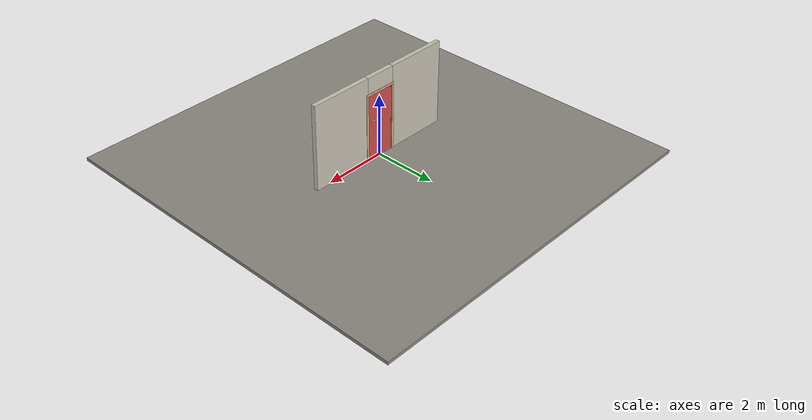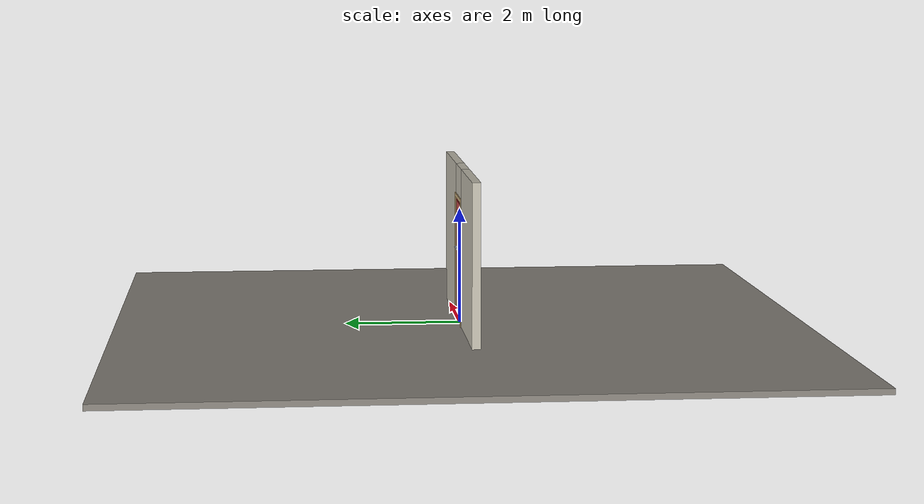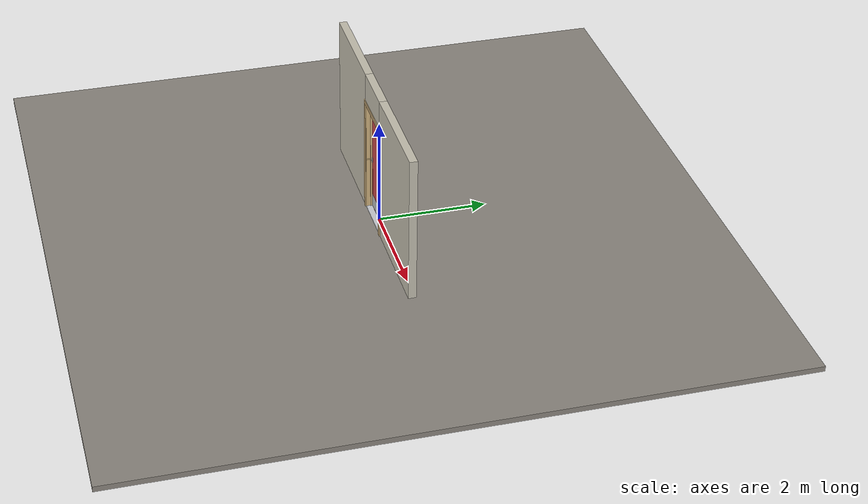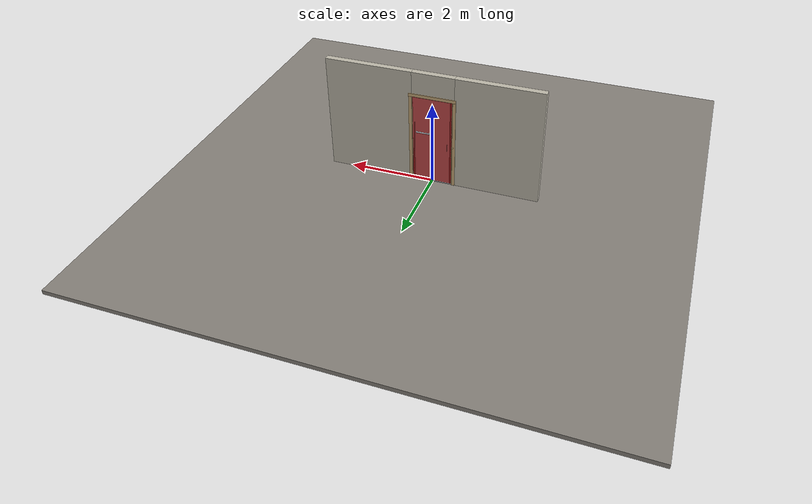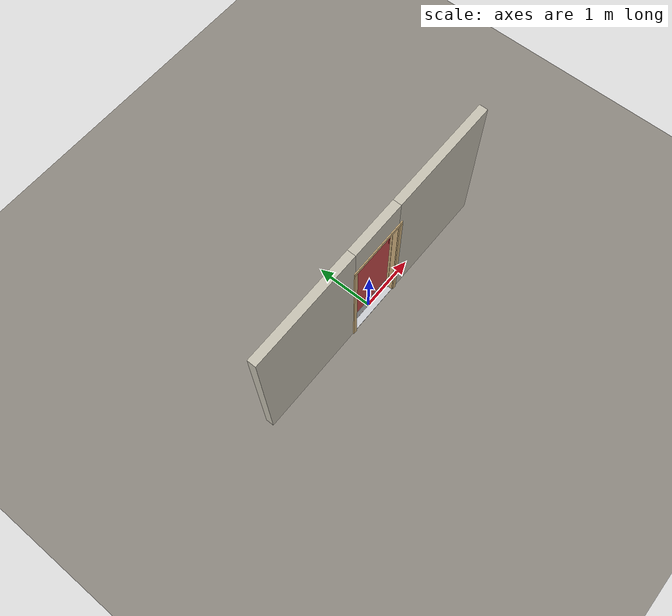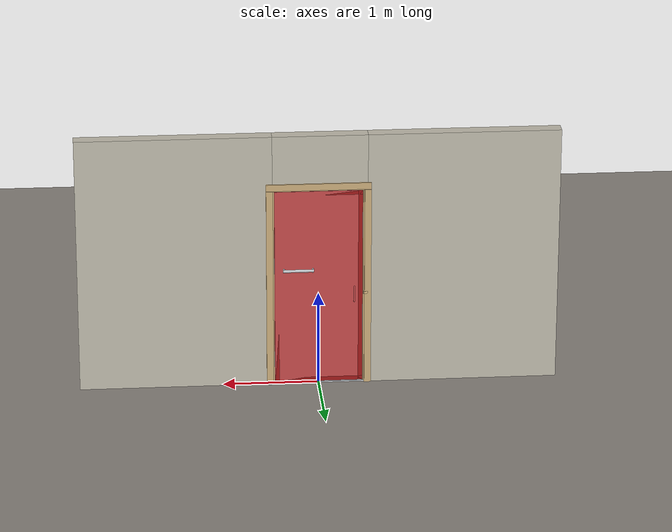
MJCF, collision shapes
<?xml version="1.0" ?>
<mujoco model="db0827_swing_single_full">
  <compiler angle="radian" meshdir="../../hardware" texturedir="../../textures" autolimits="true" inertiafromgeom="false"/>
  <option timestep="0.002" integrator="implicitfast" cone="elliptic" impratio="10" noslip_iterations="3">
    <flag multiccd="enable"/>
  </option>
  <size memory="16M"/>
  <default>
    <geom condim="4" solref="0.005 1" solimp="0.95 0.99 0.001"/>
    <joint solreflimit="0.005 1" solimplimit="0.95 0.99 0.001"/>
    <tendon solreflimit="0.005 1"/>
    <equality solref="0.002 1"/>
  </default>
  <visual>
    <headlight ambient="0.4 0.4 0.4" diffuse="0.7 0.7 0.7" specular="0.2 0.2 0.2"/>
    <quality shadowsize="4096"/>
    <map znear="0.01" zfar="60"/>
  </visual>
  <asset>
    <mesh name="hinge_15fcbc0360" file="hinge_15fcbc0360.obj"/>
    <mesh name="hinge_jamb_ba35ce4e6a" file="hinge_jamb_ba35ce4e6a.obj"/>
    <mesh name="pull_1e5d69a91a" file="pull_1e5d69a91a.obj"/>
    <material name="mat_floor" rgba="0.55 0.53 0.5 1" specular="0.2" shininess="0.15" reflectance="0"/>
    <material name="mat_wall" rgba="0.78 0.76 0.7 1" specular="0.2" shininess="0.1" reflectance="0"/>
    <material name="mat_leaf" rgba="0.65 0.1 0.1 1" specular="0.2" shininess="0.61" reflectance="0"/>
    <material name="mat_mesh_infill" rgba="0.6 0.62 0.64 0.55" specular="0.68" shininess="0.3" reflectance="0.1"/>
    <material name="mat_hinge" rgba="0.65 0.66 0.68 1" specular="0.74" shininess="0.5" reflectance="0.36"/>
    <material name="mat_op_aluminum" rgba="0.8 0.81 0.83 1" specular="0.8" shininess="0.6" reflectance="0.4"/>
    <material name="mat_op_stainless" rgba="0.75 0.76 0.77 1" specular="0.8" shininess="0.65" reflectance="0.4"/>
    <material name="mat_bolt" rgba="0.85 0.66 0.3 1" specular="0.8" shininess="0.75" reflectance="0.4"/>
    <material name="mat_frame" rgba="0.82 0.7 0.5 1" specular="0.2" shininess="0.45" reflectance="0"/>
    <material name="mat_seal" rgba="0.1 0.1 0.1 1" specular="0.2" shininess="0.1" reflectance="0"/>
    <material name="mat_threshold" rgba="0.8 0.81 0.83 1" specular="0.8" shininess="0.6" reflectance="0.4"/>
    <material name="mat_closer" rgba="0.8 0.81 0.83 1" specular="0.8" shininess="0.6" reflectance="0.4"/>
    <material name="mat_kick" rgba="0.75 0.76 0.77 1" specular="0.8" shininess="0.65" reflectance="0.4"/>
    <texture name="skybox" type="skybox" builtin="gradient" rgb1="0.6 0.7 0.85" rgb2="0.9 0.92 0.95" width="256" height="256"/>
  </asset>
  <worldbody>
    <light name="sun" pos="1.5 -2.5 4" dir="-0.3 0.5 -0.8" directional="true" diffuse="0.8 0.8 0.8" specular="0.3 0.3 0.3" castshadow="true"/>
    <light name="fill" pos="-1.5 2.5 3" dir="0.3 -0.5 -0.7" directional="true" diffuse="0.35 0.35 0.4" castshadow="false"/>
    <camera name="robot_view" pos="0 -2.689312 1.812087" xyaxes="1 0 0 0 0.26963 0.962964" fovy="52"/>
    <camera name="far_view" pos="0 2.586313 1.812087" xyaxes="-1 0 0 0 -0.26963 0.962964" fovy="52"/>
    <camera name="iso" pos="-2.004737 -2.267262 2.234138" xyaxes="0.741536 -0.670913 0 0.242917 0.268487 0.932151" fovy="46"/>
    <camera name="detail_handle" pos="-0.1865 -0.726 1.296" xyaxes="0.97561 0.219512 0 -0.070934 0.315262 0.94635" fovy="38"/>
    <geom name="floor" type="box" size="6 6 0.05" pos="0 0 -0.05" material="mat_floor" group="0" contype="1" conaffinity="1" friction="0.8 0.005 0.0001" density="2400"/>
    <geom name="wall_left" type="box" size="0.99525 0.0725 1.3735" pos="-1.50475 -0.0515 1.3735" material="mat_wall" group="0" contype="1" conaffinity="1" friction="0.6 0.005 0.0001" density="800"/>
    <geom name="wall_right" type="box" size="1.01025 0.0725 1.3735" pos="1.48975 -0.0515 1.3735" material="mat_wall" group="0" contype="1" conaffinity="1" friction="0.6 0.005 0.0001" density="800"/>
    <geom name="wall_header" type="box" size="0.4945 0.0725 0.2755" pos="-0.015 -0.0515 2.4715" material="mat_wall" group="0" contype="1" conaffinity="1" friction="0.6 0.005 0.0001" density="800"/>
    <geom name="hinge_0_jamb" type="mesh" mesh="hinge_jamb_ba35ce4e6a" pos="0.4575 0.021 0.267" quat="0 0 0 1" material="mat_hinge" group="1" contype="0" conaffinity="0" density="7850"/>
    <geom name="hinge_1_jamb" type="mesh" mesh="hinge_jamb_ba35ce4e6a" pos="0.4575 0.021 1.08" quat="0 0 0 1" material="mat_hinge" group="1" contype="0" conaffinity="0" density="7850"/>
    <geom name="hinge_2_jamb" type="mesh" mesh="hinge_jamb_ba35ce4e6a" pos="0.4575 0.021 1.963" quat="0 0 0 1" material="mat_hinge" group="1" contype="0" conaffinity="0" density="7850"/>
    <geom name="jamb_hinge" type="box" size="0.0095 0.0725 1.0735" pos="0.47 -0.0515 1.0735" material="mat_frame" group="0" contype="1" conaffinity="1" friction="0.6 0.005 0.0001" density="400"/>
    <geom name="strike_1016_wall_n" type="box" size="0.0245 0.05925 0.0115" pos="-0.485 -0.06475 1.016" material="mat_frame" group="0" contype="1" conaffinity="1" friction="0.6 0.005 0.0001" density="400"/>
    <geom name="strike_1016_wall_p" type="box" size="0.0245 0.008 0.0115" pos="-0.485 0.0135 1.016" material="mat_frame" group="0" contype="1" conaffinity="1" friction="0.6 0.005 0.0001" density="400"/>
    <geom name="strike_1016_ramp" type="box" size="0.0245 0.015977 0.0115" pos="-0.489002 0.028066 1.016" quat="0.984601 0 0 0.174819" material="mat_frame" group="0" contype="1" conaffinity="1" friction="0.12 0.005 0.0001" density="400"/>
    <geom name="strike_1016_back" type="box" size="0.0175 0.0055 0.0115" pos="-0.492 0 1.016" material="mat_frame" group="0" contype="1" conaffinity="1" friction="0.6 0.005 0.0001" density="400"/>
    <geom name="jamb_strike_0" type="box" size="0.0245 0.0725 0.50225" pos="-0.485 -0.0515 0.50225" material="mat_frame" group="0" contype="1" conaffinity="1" friction="0.6 0.005 0.0001" density="400"/>
    <geom name="jamb_strike_1" type="box" size="0.0245 0.0725 0.55975" pos="-0.485 -0.0515 1.58725" material="mat_frame" group="0" contype="1" conaffinity="1" friction="0.6 0.005 0.0001" density="400"/>
    <geom name="jamb_head" type="box" size="0.4945 0.0725 0.0095" pos="-0.015 -0.0515 2.1565" material="mat_frame" group="0" contype="1" conaffinity="1" friction="0.6 0.005 0.0001" density="400"/>
    <geom name="head_stud" type="box" size="0.4945 0.0725 0.015" pos="-0.015 -0.0515 2.181" material="mat_wall" group="0" contype="1" conaffinity="1" friction="0.6 0.005 0.0001" density="500"/>
    <geom name="stop_hinge" type="box" size="0.0055 0.016 1.0735" pos="0.455 -0.0305 1.0735" material="mat_frame" group="0" contype="1" conaffinity="1" friction="0.6 0.005 0.0001" density="400"/>
    <geom name="stop_strike" type="box" size="0.0055 0.016 1.0735" pos="-0.455 -0.0305 1.0735" material="mat_frame" group="0" contype="1" conaffinity="1" friction="0.6 0.005 0.0001" density="400"/>
    <geom name="stop_head" type="box" size="0.4605 0.016 0.0055" pos="0 -0.0305 2.1415" material="mat_frame" group="0" contype="1" conaffinity="1" friction="0.6 0.005 0.0001" density="400"/>
    <geom name="seal_hinge" type="box" size="0.004 0.002 1.0735" pos="0.4575 -0.016 1.0735" material="mat_seal" group="1" contype="0" conaffinity="0" density="1100"/>
    <geom name="seal_strike" type="box" size="0.004 0.002 1.0735" pos="-0.4575 -0.016 1.0735" material="mat_seal" group="1" contype="0" conaffinity="0" density="1100"/>
    <geom name="seal_head" type="box" size="0.4405 0.002 0.008" pos="0 -0.016 2.135" material="mat_seal" group="1" contype="0" conaffinity="0" density="1100"/>
    <geom name="casing_l_n" type="box" size="0.035 0.008 1.083" pos="-0.5095 -0.132 1.0735" material="mat_frame" group="2" contype="0" conaffinity="0" density="400"/>
    <geom name="casing_r_n" type="box" size="0.035 0.008 1.083" pos="0.5095 -0.132 1.0735" material="mat_frame" group="2" contype="0" conaffinity="0" density="400"/>
    <geom name="casing_h_n" type="box" size="0.5445 0.008 0.035" pos="0 -0.132 2.196" material="mat_frame" group="2" contype="0" conaffinity="0" density="400"/>
    <geom name="casing_l_p" type="box" size="0.035 0.008 1.083" pos="-0.5095 0.029 1.0735" material="mat_frame" group="2" contype="0" conaffinity="0" density="400"/>
    <geom name="casing_r_p" type="box" size="0.035 0.008 1.083" pos="0.5095 0.029 1.0735" material="mat_frame" group="2" contype="0" conaffinity="0" density="400"/>
    <geom name="casing_h_p" type="box" size="0.5445 0.008 0.035" pos="0 0.029 2.196" material="mat_frame" group="2" contype="0" conaffinity="0" density="400"/>
    <geom name="threshold" type="box" size="0.4795 0.0725 0.0065" pos="0 -0.0515 0.0065" material="mat_threshold" group="0" contype="1" conaffinity="1" friction="0.5 0.005 0.0001" density="2700"/>
    <site name="approach_point" pos="0 -1.5 0" quat="1 0 0 0" size="0.05" rgba="0.2 0.9 0.2 0.5" group="4"/>
    <site name="goal_point" pos="0 1.5 0" quat="1 0 0 0" size="0.05" rgba="0.2 0.9 0.2 0.5" group="4"/>
    <site name="door_plane_center" pos="0 0 1.0735" quat="1 0 0 0" size="0.02" rgba="0.2 0.9 0.2 0.5" group="4"/>
    <body name="leaf" pos="0.4605 0 0">
      <inertial pos="-0.459333 0.000142 1.064234" mass="149.951565" quat="0.500051 -0.500461 -0.499898 -0.49959" diaginertia="10.511678386 57.353886597 67.838489156"/>
      <joint name="leaf_hinge" type="hinge" axis="0 0 -1" pos="-0.003 0.021 0" limited="true" range="0 1.919862" solreflimit="0.02 1" damping="4.268966" frictionloss="2.301021" stiffness="3" springref="-1.12" armature="0.02"/>
      <geom name="leaf_slab_col" type="box" size="0.457 0.014 1.063" pos="-0.46 0 1.08" material="mat_leaf" group="3" contype="1" conaffinity="1" rgba="0.8 0.3 0.3 0.25" friction="0.35 0.005 0.0001" density="1"/>
      <geom name="leaf_rail_b" type="box" size="0.457 0.014 0.0225" pos="-0.46 0 0.0395" material="mat_leaf" group="1" contype="0" conaffinity="0" density="1"/>
      <geom name="leaf_rail_t" type="box" size="0.457 0.014 0.0225" pos="-0.46 0 2.1205" material="mat_leaf" group="1" contype="0" conaffinity="0" density="1"/>
      <geom name="leaf_stile_h" type="box" size="0.0225 0.014 1.063" pos="-0.0255 0 1.08" material="mat_leaf" group="1" contype="0" conaffinity="0" density="1"/>
      <geom name="leaf_stile_l" type="box" size="0.0225 0.014 1.063" pos="-0.8945 0 1.08" material="mat_leaf" group="1" contype="0" conaffinity="0" density="1"/>
      <geom name="leaf_mesh" type="box" size="0.412 0.0015 1.018" pos="-0.46 0 1.08" material="mat_mesh_infill" group="1" contype="0" conaffinity="0" density="1"/>
      <geom name="hinge_0" type="mesh" mesh="hinge_15fcbc0360" pos="-0.003 0.021 0.267" quat="0 0 0 1" material="mat_hinge" group="1" contype="0" conaffinity="0" density="7850"/>
      <geom name="hinge_1" type="mesh" mesh="hinge_15fcbc0360" pos="-0.003 0.021 1.08" quat="0 0 0 1" material="mat_hinge" group="1" contype="0" conaffinity="0" density="7850"/>
      <geom name="hinge_2" type="mesh" mesh="hinge_15fcbc0360" pos="-0.003 0.021 1.963" quat="0 0 0 1" material="mat_hinge" group="1" contype="0" conaffinity="0" density="7850"/>
      <geom name="leaf_inside_pull_p" type="mesh" mesh="pull_1e5d69a91a" pos="-0.827 0.014 1.016" quat="0 0 0.707107 0.707107" material="mat_op_stainless" group="1" contype="0" conaffinity="0" density="3000"/>
      <geom name="leaf_inside_pull_col_p" type="capsule" size="0.0095 0.08" pos="-0.827 0.074 1.016" material="mat_op_stainless" group="3" contype="1" conaffinity="1" rgba="0.8 0.3 0.3 0.25" friction="0.7 0.01 0.0001" density="3000"/>
      <geom name="leaf_pushbutton_housing" type="box" size="0.02 0.006 0.045" pos="-0.872 -0.02 1.016" material="mat_op_aluminum" group="1" contype="0" conaffinity="0" density="2700"/>
      <geom name="leaf_latch_bolt_faceplate" type="box" size="0.0006 0.01 0.0215" pos="-0.9164 0 1.016" material="mat_bolt" group="1" contype="0" conaffinity="0" density="8500"/>
      <geom name="closer_pneumatic" type="cylinder" size="0.015 0.16" pos="-0.25 0.044 1.2756" quat="0.707107 0 0.707107 0" material="mat_closer" group="1" contype="0" conaffinity="0" density="2700"/>
      <geom name="closer_pneumatic_bracket_0" type="box" size="0.008 0.016 0.018" pos="-0.1 0.03 1.2756" material="mat_closer" group="1" contype="0" conaffinity="0" density="2700"/>
      <geom name="closer_pneumatic_bracket_1" type="box" size="0.008 0.016 0.018" pos="-0.4 0.03 1.2756" material="mat_closer" group="1" contype="0" conaffinity="0" density="2700"/>
      <geom name="kick_plate_n" type="box" size="0.427 0.0008 0.125" pos="-0.46 -0.0148 0.152" material="mat_kick" group="2" contype="0" conaffinity="0" density="7900"/>
      <site name="leaf_inside_pull_grip_p" pos="-0.827 0.074 1.016" quat="1 0 0 0" size="0.012" rgba="0.2 0.9 0.2 0.5" group="4"/>
      <site name="leaf_edge_mid" pos="-0.917 0 1.063" quat="1 0 0 0" size="0.02" rgba="0.2 0.9 0.2 0.5" group="4"/>
      <body name="leaf_pushbutton" pos="-0.872 -0.024 1.016">
        <inertial pos="0 -0.006 0" mass="0.010179" quat="0 0 0.707107 0.707107" diaginertia="0.000000377 0.000000377 0.000000509"/>
        <joint name="leaf_pushbutton_slide" type="slide" axis="0 1 0" limited="true" range="0 0.006" damping="16.008936" frictionloss="0.5" stiffness="400" springref="-0.0075" armature="0.15"/>
        <geom name="leaf_pushbutton_geom" type="cylinder" size="0.01 0.006" pos="0 -0.006 0" quat="0.707107 -0.707107 0 0" material="mat_op_aluminum" group="0" contype="1" conaffinity="1" friction="0.6 0.005 0.0001" density="2700"/>
        <site name="leaf_push" pos="0 -0.012 0" quat="1 0 0 0" size="0.01" rgba="0.2 0.9 0.2 0.5" group="4"/>
      </body>
      <body name="leaf_latch_bolt" pos="-0.917 0 1.016">
        <inertial pos="0.008 0 0" mass="0.014242" quat="0 0 -0.707107 0.707107" diaginertia="0.00000011 0.000001386 0.000001386"/>
        <joint name="leaf_latch_bolt_slide" type="slide" axis="1 0 0" limited="true" range="0 0.01" damping="2" frictionloss="0.3" stiffness="300" springref="-0.006667" armature="0.1"/>
        <geom name="leaf_latch_bolt_capsule" type="capsule" size="0.004 0.014" pos="0.008 0 0" quat="0.707107 0 -0.707107 0" material="mat_bolt" group="0" contype="1" conaffinity="1" friction="0.2 0.005 0.0001" density="8500"/>
      </body>
    </body>
  </worldbody>
  <tendon>
    <fixed name="leaf_latch_bolt_coupling" limited="true" range="0 10">
      <joint joint="leaf_latch_bolt_slide" coef="1"/>
      <joint joint="leaf_pushbutton_slide" coef="-2"/>
    </fixed>
  </tendon>
  <sensor>
    <jointpos name="leaf_hinge_pos" joint="leaf_hinge"/>
    <jointvel name="leaf_hinge_vel" joint="leaf_hinge"/>
    <jointpos name="leaf_pushbutton_slide_pos" joint="leaf_pushbutton_slide"/>
    <jointvel name="leaf_pushbutton_slide_vel" joint="leaf_pushbutton_slide"/>
    <jointpos name="leaf_latch_bolt_slide_pos" joint="leaf_latch_bolt_slide"/>
    <jointvel name="leaf_latch_bolt_slide_vel" joint="leaf_latch_bolt_slide"/>
  </sensor>
</mujoco>
